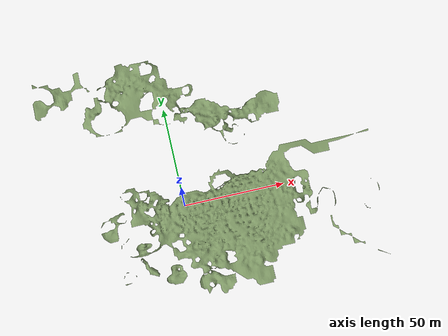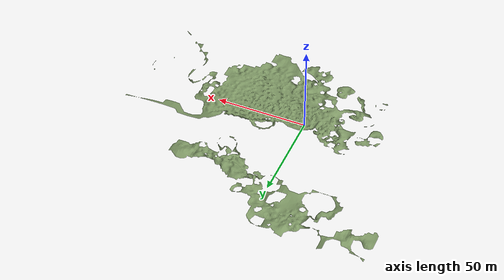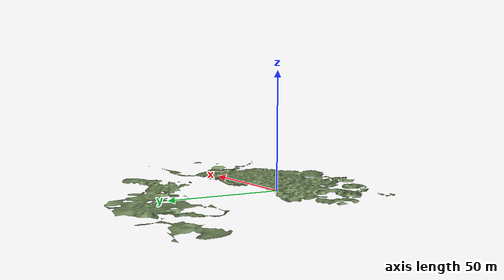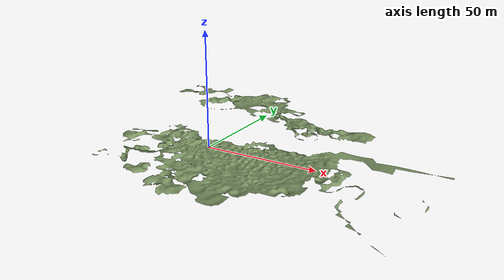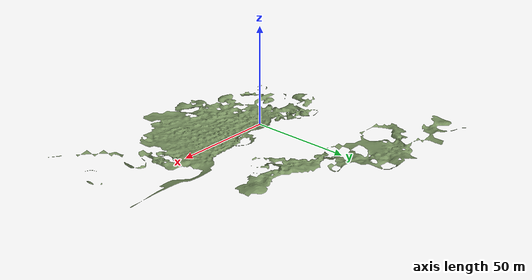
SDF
<?xml version="1.0"?>
<sdf version="1.6">
  <model name="pcd_terrain">
    <static>true</static>
    <link name="terrain_link">
      <collision name="terrain_collision">
        <geometry>
          <mesh>
            <uri>model://pcd_terrain/meshes/terrain.stl</uri>
            <scale>1 1 1</scale>
          </mesh>
        </geometry>
      </collision>
      <visual name="terrain_visual">
        <geometry>
          <mesh>
            <uri>model://pcd_terrain/meshes/terrain.stl</uri>
            <scale>1 1 1</scale>
          </mesh>
        </geometry>
        <material>
          <ambient>0.4 0.5 0.3 1</ambient>
          <diffuse>0.5 0.6 0.4 1</diffuse>
        </material>
      </visual>
    </link>
  </model>
</sdf>
